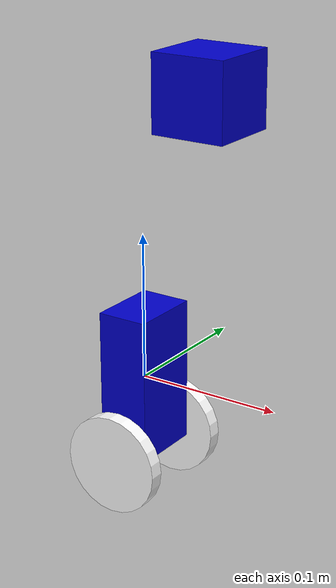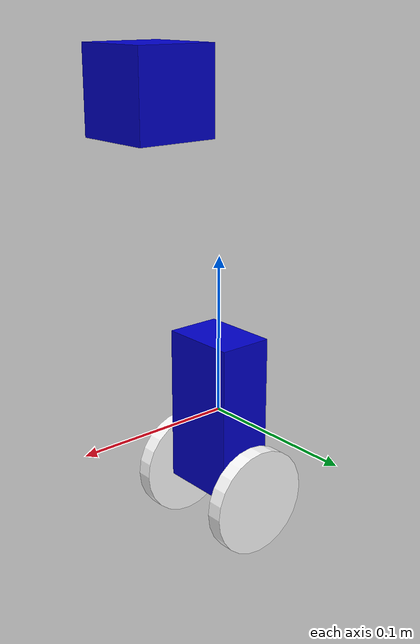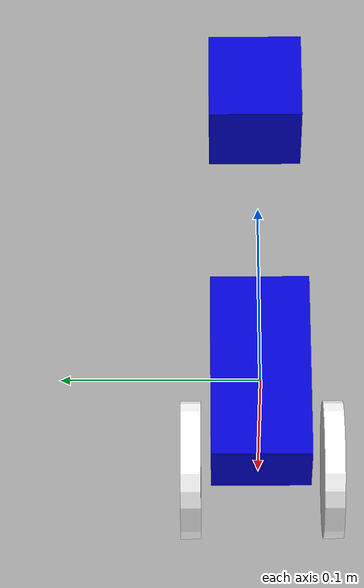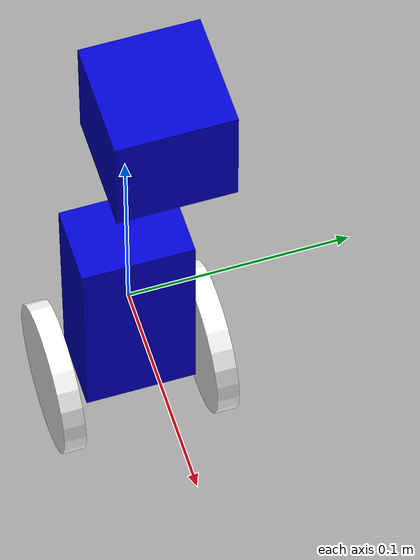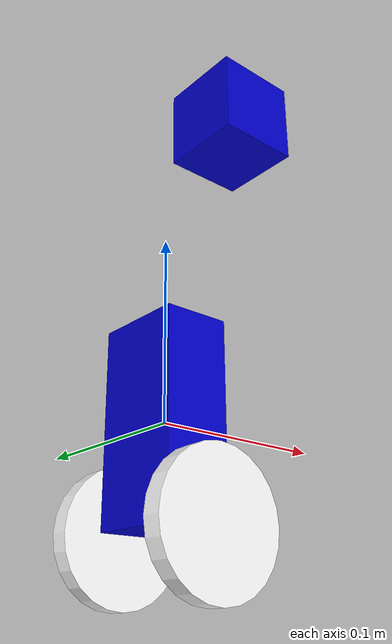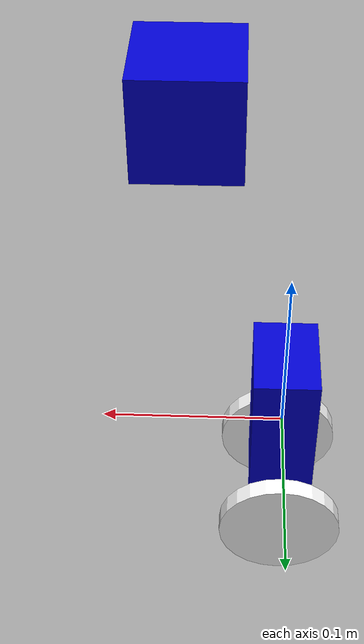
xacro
<?xml version="1.0"?>
<robot xmlns:xacro="http://www.ros.org/wiki/xacro" name = "EduMIP">
 <xacro:property name="wheel_sep" value="0.070" />
 <xacro:property name="wheel_radius" value="0.034" />
 <xacro:property name="wheel_width" value="0.010" />
 <xacro:property name="body_height" value="0.1" />
 <xacro:property name="body_width" value="0.050" />
 <xacro:property name="body_length" value="0.035" />
 <xacro:property name="camera_link" value="0.05" />
 <!-- Size of square 'camera' box -->

 <material name="body">
  <color rgba="0 0 0.8 1"/>
 </material>

 <material name="wheel">
  <color rgba="1 1 1 1"/>
 </material>

 <link name="edumip_body">
  <visual>
   <origin xyz="0 0 0"/>
   <geometry>
    <box size="${body_length} ${body_width} ${body_height}"/>
   </geometry>
   <material name="body"/>
  </visual>

  <collison>
   <origin xyz="0 0 0"/>
   <geometry>
    <box size="${body_length} ${body_width} ${body_height}"/>
   </geometry>
  </collison>

  <inertial>
    <origin xyz="0 0 -0.2"/>
    <mass value="1"/>
    <inertia ixx="0.01" ixy="0" ixz="0" iyy="0.01" iyz="0" izz="0.01"/>
  </inertial>
 </link>

 <link name="wheelL">
  <visual>
   <origin rpy="1.57075 0 0" xyz="0 ${-wheel_width} 0"/>
   <material name="wheel"/>
   <geometry>
    <cylinder length="${wheel_width}" radius="${wheel_radius}"/>
   </geometry>
  </visual>

  <collision>
   <origin rpy="1.57075 0 0" xyz="0 ${-wheel_width} 0"/>
   <geometry>
    <cylinder length="${wheel_width}" radius="${wheel_radius}"/>
   </geometry>
  </collision>

  <inertial>
    <origin rpy="1.57075 0 0" xyz="0 ${-wheel_width} 0"/>
    <mass value="0.2"/>
    <inertia ixx="0.01" ixy="0" ixz="0" iyy="0.01" iyz="0" izz="0.01"/>
  </inertial>

 </link>

  <link name="wheelR">
  <visual>
   <origin rpy="1.57075 0 0" xyz="0 ${wheel_width} 0"/>
   <material name="wheel"/>
   <geometry>
    <cylinder length="${wheel_width}" radius="${wheel_radius}"/>
   </geometry>
  </visual>

    <collision>
   <origin rpy="1.57075 0 0" xyz="0 ${wheel_width} 0"/>
   <geometry>
    <cylinder length="${wheel_width}" radius="${wheel_radius}"/>
   </geometry>
  </collision>

  <inertial>
    <origin rpy="1.57075 0 0" xyz="0 ${wheel_width} 0"/>
    <mass value="0.2"/>
    <inertia ixx="0.01" ixy="0" ixz="0" iyy="0.01" iyz="0" izz="0.01"/>
  </inertial>
  </link>

  <link name="camera_link">
    <collision>
      <origin xyz="0 0 ${body_height}" rpy="0 0 0"/>
      <geometry>
    <box size="${camera_link} ${camera_link} ${camera_link}"/>
      </geometry>
    </collision>

    <visual>
      <origin xyz="0 0 ${body_height}" rpy="0 0 0"/>
      <geometry>
    <box size="${camera_link} ${camera_link} ${camera_link}"/>
      </geometry>
      <material name="body"/>
    </visual>

    <inertial>
      <mass value="1e-5" />
      <origin xyz="0 0 ${body_height}" rpy="0 0 0"/>
      <inertia ixx="1e-6" ixy="0" ixz="0" iyy="1e-6" iyz="0" izz="1e-6" />
    </inertial>
  </link>

  <joint name="camera_joint" type="fixed">
    <axis xyz="0 1 0"/>
    <origin xyz="${camera_link} 0 ${body_height}"/>
    <parent link="edumip_body"/>
    <child link="camera_link"/>
  </joint>

<joint name="wheelL_joint" type="continuous">
 <parent link="edumip_body"/>
 <child link="wheelL"/>
 <axis xyz="0 1 0"/>
 <origin rpy="0 0 0" xyz="0 ${-body_width/2} ${-body_height/2}"/>
 <dynamics friction ="0.7"/>
</joint>

<joint name="wheelR_joint" type="continuous">
 <parent link="edumip_body"/>
 <child link="wheelR"/>
 <axis xyz="0 1 0"/>
 <origin rpy="0 0 0" xyz="0 ${body_width/2} ${-body_height/2}"/>
 <dynamics friction="0.7"/>
</joint>

 <gazebo reference="edumip_body">
   <material>Gazebo/Blue</material>
   <mu1>0.2</mu1>
   <mu2>0.2</mu2>
 </gazebo>
 <gazebo reference="wheelR">
   <material>Gazebo/Green</material>
   <mu1>0.2</mu1>
   <mu2>0.2</mu2>
 </gazebo>
 <gazebo reference="wheelL">
   <material>Gazebo/Red</material>
   <mu1>0.2</mu1>
   <mu2>0.2</mu2>
 </gazebo>

 <gazebo>
 <plugin name="differential_drive_controller" filename="libgazebo_ros_diff_drive.so">
   <legacyMode>false</legacyMode>
   <rosDebugLevel>3</rosDebugLevel>
   <alwaysOn>true</alwaysOn>
   <updateRate>10</updateRate>
   <leftJoint>wheelL_joint</leftJoint>
   <rightJoint>wheelR_joint</rightJoint>
   <wheelSeparation>${wheel_sep}</wheelSeparation>
   <wheelDiameter>${wheel_radius*2.0}</wheelDiameter>
   <torque>0.1</torque>
   <commandTopic>/edumip/cmd</commandTopic>
   <odometryTopic>/edumip/odom</odometryTopic>
   <odometryFrame>world</odometryFrame>
   <robotBaseFrame>edumip_body</robotBaseFrame>
   <publishTf>1</publishTf>
   <publishWheelTF>false</publishWheelTF>
   <publishWheelJointState>true</publishWheelJointState>
   <wheelAcceleration>0</wheelAcceleration>
   <wheelTorque>0.1</wheelTorque>
   <odometrySource>world</odometrySource>
 </plugin>
</gazebo>

<gazebo reference="camera_link">
 <sensor type="camera" name="camera1">
   <update_rate>10.0</update_rate>
   <camera name="head">
     <horizontal_fov>1.3962634</horizontal_fov>
     <image>
       <width>800</width>
       <height>800</height>
       <format>R8G8B8</format>
     </image>
     <clip>
       <near>0.02</near>
       <far>300</far>
     </clip>
     <noise>
       <type>gaussian</type>
       <mean>0.0</mean>
       <stddev>0.007</stddev>
     </noise>
   </camera>
   <plugin name="camera_controller" filename="libgazebo_ros_camera.so">
     <robotNamespace>edumip</robotNamespace>
     <alwaysOn>true</alwaysOn>
     <updateRate>30.0</updateRate>
     <cameraName>camera1</cameraName>
     <imageTopicName>image_raw</imageTopicName>
     <cameraInfoTopicName>camera_info</cameraInfoTopicName>
     <frameName>camera_link</frameName>
     <hackBaseline>0.07</hackBaseline>
     <distortionK1>0.0</distortionK1>
     <distortionK2>0.0</distortionK2>
     <distortionK3>0.0</distortionK3>
     <distortionT1>0.0</distortionT1>
     <distortionT2>0.0</distortionT2>
   </plugin>
 </sensor>
</gazebo>

</robot>
